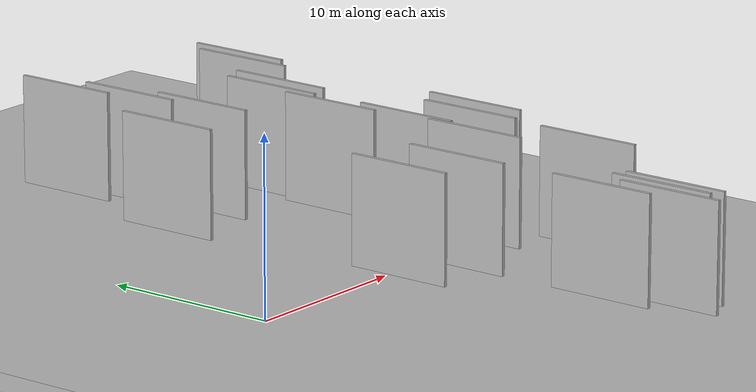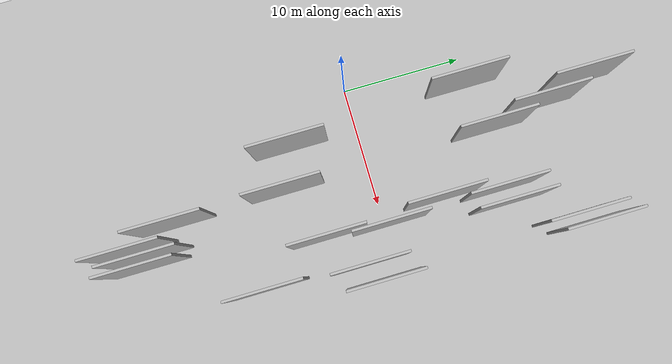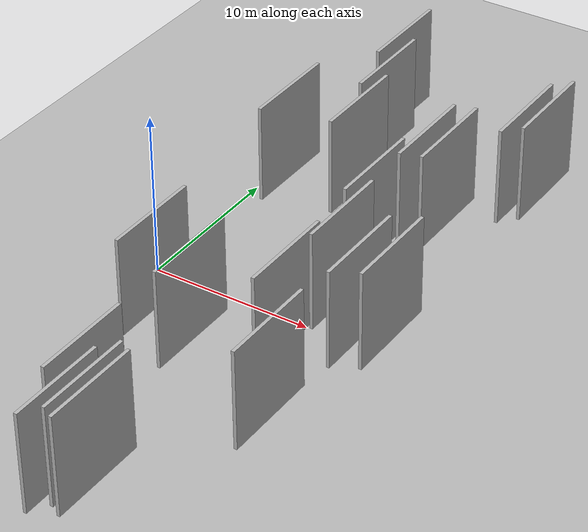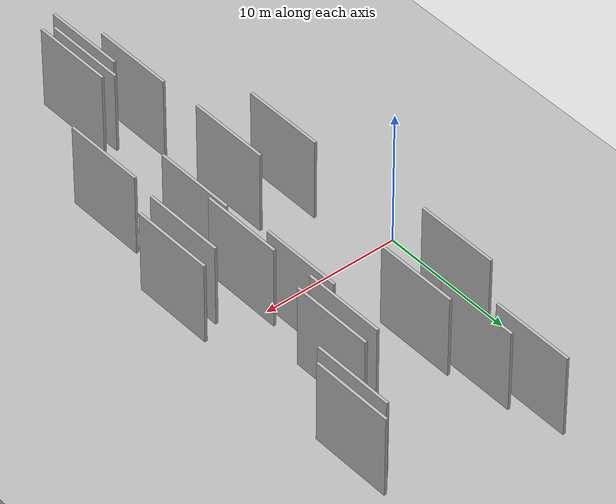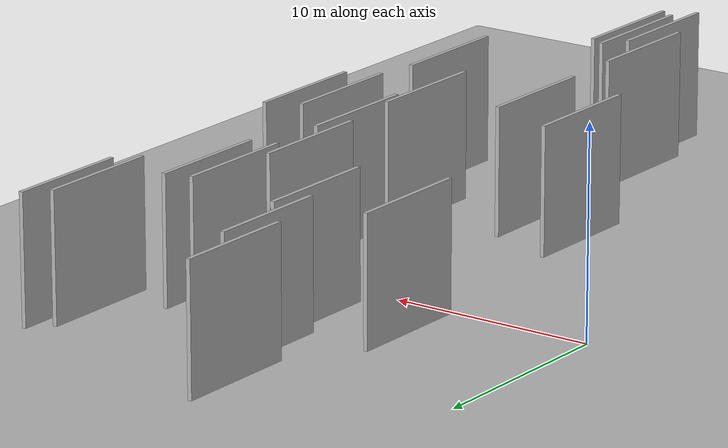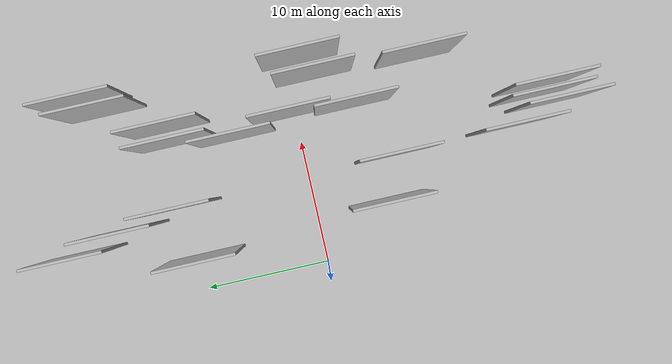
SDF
<?xml version="1.0" encoding="utf-8"?>

<sdf version="1.6">

   <world name="default">

      <gui fullscreen="0">

         <camera name="user_camera">

            <pose>-15 0 4.57585 0 0 0</pose>

            <view_controller>orbit</view_controller>

         </camera>

      </gui>

      <scene>

         <sky>

           <clouds>

             <speed>12</speed>

           </clouds>

         </sky>

         <ambient>0.4 0.4 0.4 1</ambient>

         <background>0.7 0.7 0.7 1</background>

         <shadows>1</shadows>

      </scene>

      <gravity>0 0 -9.8066</gravity>

      <magnetic_field>6e-06 2.3e-05 -4.2e-05</magnetic_field>

      <physics default="0" name="default_physics" type="ode">

         <ode>

            <solver>

               <type>quick</type>

               <iters>10</iters>

               <sor>1.0</sor>

               <use_dynamic_moi_rescaling>0</use_dynamic_moi_rescaling>

            </solver>

            <constraints>

               <cfm>0</cfm>

               <erp>0.2</erp>

               <contact_max_correcting_vel>100</contact_max_correcting_vel>

               <contact_surface_layer>0.001</contact_surface_layer>

            </constraints>

         </ode>

         <max_step_size>0.004</max_step_size>

         <real_time_factor>1</real_time_factor>

         <real_time_update_rate>250</real_time_update_rate>

      </physics>

      <light name="sun" type="directional">

         <cast_shadows>1</cast_shadows>

         <pose>0 0 10 0 0 0</pose>

         <diffuse>0.8 0.8 0.8 1</diffuse>

         <specular>0.2 0.2 0.2 1</specular>

         <attenuation>

            <range>1000</range>

            <constant>0.9</constant>

            <linear>0.01</linear>

            <quadratic>0.001</quadratic>

         </attenuation>

         <direction>-0.5 0.1 -0.9</direction>

      </light>

      <include>

         <name>ground_plane_1</name>

         <uri>model://HANNAS_ground_plane</uri>

         <pose>0 0 0  0 0 0</pose>

      </include>

      <include>

         <name>ground_plane_2</name>

         <uri>model://HANNAS_ground_plane</uri>

         <pose>100 0 0  0 0 0</pose>

      </include>

      <model name="HANNAS_wall_1">

         <static>1</static>

         <pose frame="">7.0231 10.0209 2.5 0.000000 0.000000 1.570796</pose>

         <link name="link">

            <pose frame="">0 0 3.00 0 0 0</pose>

            <collision name="collision">

               <geometry>

                  <box>

                     <size>6.00 0.2 6.00</size>

                  </box>

               </geometry>

               <max_contacts>10</max_contacts>

               <surface>

                  <contact>

                     <ode/>

                  </contact>

                  <bounce/>

                  <friction>

                     <torsional>

                        <ode/>

                     </torsional>

                     <ode/>

                  </friction>

               </surface>

            </collision>

            <visual name="visual">

               <cast_shadows>0</cast_shadows>

               <geometry>

                  <box>

                     <size>6.00 0.2 6.00</size>

                  </box>

               </geometry>

               <material>

                  <script>

                     <uri>model://HANNAS_wall/materials/scripts</uri>

                     <uri>model://HANNAS_wall/materials/textures</uri>

                     <name>vrc/HANNAS_wall</name>

                  </script>

               </material>

            </visual>

            <self_collide>0</self_collide>

            <enable_wind>0</enable_wind>

            <kinematic>0</kinematic>

         </link>

      </model>

      <model name="HANNAS_wall_2">

         <static>1</static>

         <pose frame="">7.4651 -15.7052 2.5 0.000000 0.000000 1.570796</pose>

         <link name="link">

            <pose frame="">0 0 3.00 0 0 0</pose>

            <collision name="collision">

               <geometry>

                  <box>

                     <size>6.00 0.2 6.00</size>

                  </box>

               </geometry>

               <max_contacts>10</max_contacts>

               <surface>

                  <contact>

                     <ode/>

                  </contact>

                  <bounce/>

                  <friction>

                     <torsional>

                        <ode/>

                     </torsional>

                     <ode/>

                  </friction>

               </surface>

            </collision>

            <visual name="visual">

               <cast_shadows>0</cast_shadows>

               <geometry>

                  <box>

                     <size>6.00 0.2 6.00</size>

                  </box>

               </geometry>

               <material>

                  <script>

                     <uri>model://HANNAS_wall/materials/scripts</uri>

                     <uri>model://HANNAS_wall/materials/textures</uri>

                     <name>vrc/HANNAS_wall</name>

                  </script>

               </material>

            </visual>

            <self_collide>0</self_collide>

            <enable_wind>0</enable_wind>

            <kinematic>0</kinematic>

         </link>

      </model>

      <model name="HANNAS_wall_3">

         <static>1</static>

         <pose frame="">14.2859 -9.9177 2.5 0.000000 0.000000 1.570796</pose>

         <link name="link">

            <pose frame="">0 0 3.00 0 0 0</pose>

            <collision name="collision">

               <geometry>

                  <box>

                     <size>6.00 0.2 6.00</size>

                  </box>

               </geometry>

               <max_contacts>10</max_contacts>

               <surface>

                  <contact>

                     <ode/>

                  </contact>

                  <bounce/>

                  <friction>

                     <torsional>

                        <ode/>

                     </torsional>

                     <ode/>

                  </friction>

               </surface>

            </collision>

            <visual name="visual">

               <cast_shadows>0</cast_shadows>

               <geometry>

                  <box>

                     <size>6.00 0.2 6.00</size>

                  </box>

               </geometry>

               <material>

                  <script>

                     <uri>model://HANNAS_wall/materials/scripts</uri>

                     <uri>model://HANNAS_wall/materials/textures</uri>

                     <name>vrc/HANNAS_wall</name>

                  </script>

               </material>

            </visual>

            <self_collide>0</self_collide>

            <enable_wind>0</enable_wind>

            <kinematic>0</kinematic>

         </link>

      </model>

      <model name="HANNAS_wall_4">

         <static>1</static>

         <pose frame="">10.0547 -18.4060 2.5 0.000000 0.000000 1.570796</pose>

         <link name="link">

            <pose frame="">0 0 3.00 0 0 0</pose>

            <collision name="collision">

               <geometry>

                  <box>

                     <size>6.00 0.2 6.00</size>

                  </box>

               </geometry>

               <max_contacts>10</max_contacts>

               <surface>

                  <contact>

                     <ode/>

                  </contact>

                  <bounce/>

                  <friction>

                     <torsional>

                        <ode/>

                     </torsional>

                     <ode/>

                  </friction>

               </surface>

            </collision>

            <visual name="visual">

               <cast_shadows>0</cast_shadows>

               <geometry>

                  <box>

                     <size>6.00 0.2 6.00</size>

                  </box>

               </geometry>

               <material>

                  <script>

                     <uri>model://HANNAS_wall/materials/scripts</uri>

                     <uri>model://HANNAS_wall/materials/textures</uri>

                     <name>vrc/HANNAS_wall</name>

                  </script>

               </material>

            </visual>

            <self_collide>0</self_collide>

            <enable_wind>0</enable_wind>

            <kinematic>0</kinematic>

         </link>

      </model>

      <model name="HANNAS_wall_5">

         <static>1</static>

         <pose frame="">11.7387 -4.5023 2.5 0.000000 0.000000 1.570796</pose>

         <link name="link">

            <pose frame="">0 0 3.00 0 0 0</pose>

            <collision name="collision">

               <geometry>

                  <box>

                     <size>6.00 0.2 6.00</size>

                  </box>

               </geometry>

               <max_contacts>10</max_contacts>

               <surface>

                  <contact>

                     <ode/>

                  </contact>

                  <bounce/>

                  <friction>

                     <torsional>

                        <ode/>

                     </torsional>

                     <ode/>

                  </friction>

               </surface>

            </collision>

            <visual name="visual">

               <cast_shadows>0</cast_shadows>

               <geometry>

                  <box>

                     <size>6.00 0.2 6.00</size>

                  </box>

               </geometry>

               <material>

                  <script>

                     <uri>model://HANNAS_wall/materials/scripts</uri>

                     <uri>model://HANNAS_wall/materials/textures</uri>

                     <name>vrc/HANNAS_wall</name>

                  </script>

               </material>

            </visual>

            <self_collide>0</self_collide>

            <enable_wind>0</enable_wind>

            <kinematic>0</kinematic>

         </link>

      </model>

      <model name="HANNAS_wall_6">

         <static>1</static>

         <pose frame="">7.3158 -6.7180 2.5 0.000000 0.000000 1.570796</pose>

         <link name="link">

            <pose frame="">0 0 3.00 0 0 0</pose>

            <collision name="collision">

               <geometry>

                  <box>

                     <size>6.00 0.2 6.00</size>

                  </box>

               </geometry>

               <max_contacts>10</max_contacts>

               <surface>

                  <contact>

                     <ode/>

                  </contact>

                  <bounce/>

                  <friction>

                     <torsional>

                        <ode/>

                     </torsional>

                     <ode/>

                  </friction>

               </surface>

            </collision>

            <visual name="visual">

               <cast_shadows>0</cast_shadows>

               <geometry>

                  <box>

                     <size>6.00 0.2 6.00</size>

                  </box>

               </geometry>

               <material>

                  <script>

                     <uri>model://HANNAS_wall/materials/scripts</uri>

                     <uri>model://HANNAS_wall/materials/textures</uri>

                     <name>vrc/HANNAS_wall</name>

                  </script>

               </material>

            </visual>

            <self_collide>0</self_collide>

            <enable_wind>0</enable_wind>

            <kinematic>0</kinematic>

         </link>

      </model>

      <model name="HANNAS_wall_7">

         <static>1</static>

         <pose frame="">16.0423 -1.2804 2.5 0.000000 0.000000 1.570796</pose>

         <link name="link">

            <pose frame="">0 0 3.00 0 0 0</pose>

            <collision name="collision">

               <geometry>

                  <box>

                     <size>6.00 0.2 6.00</size>

                  </box>

               </geometry>

               <max_contacts>10</max_contacts>

               <surface>

                  <contact>

                     <ode/>

                  </contact>

                  <bounce/>

                  <friction>

                     <torsional>

                        <ode/>

                     </torsional>

                     <ode/>

                  </friction>

               </surface>

            </collision>

            <visual name="visual">

               <cast_shadows>0</cast_shadows>

               <geometry>

                  <box>

                     <size>6.00 0.2 6.00</size>

                  </box>

               </geometry>

               <material>

                  <script>

                     <uri>model://HANNAS_wall/materials/scripts</uri>

                     <uri>model://HANNAS_wall/materials/textures</uri>

                     <name>vrc/HANNAS_wall</name>

                  </script>

               </material>

            </visual>

            <self_collide>0</self_collide>

            <enable_wind>0</enable_wind>

            <kinematic>0</kinematic>

         </link>

      </model>

      <model name="HANNAS_wall_8">

         <static>1</static>

         <pose frame="">3.0010 9.0312 2.5 0.000000 0.000000 1.570796</pose>

         <link name="link">

            <pose frame="">0 0 3.00 0 0 0</pose>

            <collision name="collision">

               <geometry>

                  <box>

                     <size>6.00 0.2 6.00</size>

                  </box>

               </geometry>

               <max_contacts>10</max_contacts>

               <surface>

                  <contact>

                     <ode/>

                  </contact>

                  <bounce/>

                  <friction>

                     <torsional>

                        <ode/>

                     </torsional>

                     <ode/>

                  </friction>

               </surface>

            </collision>

            <visual name="visual">

               <cast_shadows>0</cast_shadows>

               <geometry>

                  <box>

                     <size>6.00 0.2 6.00</size>

                  </box>

               </geometry>

               <material>

                  <script>

                     <uri>model://HANNAS_wall/materials/scripts</uri>

                     <uri>model://HANNAS_wall/materials/textures</uri>

                     <name>vrc/HANNAS_wall</name>

                  </script>

               </material>

            </visual>

            <self_collide>0</self_collide>

            <enable_wind>0</enable_wind>

            <kinematic>0</kinematic>

         </link>

      </model>

      <model name="HANNAS_wall_9">

         <static>1</static>

         <pose frame="">8.5928 -19.0831 2.5 0.000000 0.000000 1.570796</pose>

         <link name="link">

            <pose frame="">0 0 3.00 0 0 0</pose>

            <collision name="collision">

               <geometry>

                  <box>

                     <size>6.00 0.2 6.00</size>

                  </box>

               </geometry>

               <max_contacts>10</max_contacts>

               <surface>

                  <contact>

                     <ode/>

                  </contact>

                  <bounce/>

                  <friction>

                     <torsional>

                        <ode/>

                     </torsional>

                     <ode/>

                  </friction>

               </surface>

            </collision>

            <visual name="visual">

               <cast_shadows>0</cast_shadows>

               <geometry>

                  <box>

                     <size>6.00 0.2 6.00</size>

                  </box>

               </geometry>

               <material>

                  <script>

                     <uri>model://HANNAS_wall/materials/scripts</uri>

                     <uri>model://HANNAS_wall/materials/textures</uri>

                     <name>vrc/HANNAS_wall</name>

                  </script>

               </material>

            </visual>

            <self_collide>0</self_collide>

            <enable_wind>0</enable_wind>

            <kinematic>0</kinematic>

         </link>

      </model>

      <model name="HANNAS_wall_10">

         <static>1</static>

         <pose frame="">11.2848 4.7194 2.5 0.000000 0.000000 1.570796</pose>

         <link name="link">

            <pose frame="">0 0 3.00 0 0 0</pose>

            <collision name="collision">

               <geometry>

                  <box>

                     <size>6.00 0.2 6.00</size>

                  </box>

               </geometry>

               <max_contacts>10</max_contacts>

               <surface>

                  <contact>

                     <ode/>

                  </contact>

                  <bounce/>

                  <friction>

                     <torsional>

                        <ode/>

                     </torsional>

                     <ode/>

                  </friction>

               </surface>

            </collision>

            <visual name="visual">

               <cast_shadows>0</cast_shadows>

               <geometry>

                  <box>

                     <size>6.00 0.2 6.00</size>

                  </box>

               </geometry>

               <material>

                  <script>

                     <uri>model://HANNAS_wall/materials/scripts</uri>

                     <uri>model://HANNAS_wall/materials/textures</uri>

                     <name>vrc/HANNAS_wall</name>

                  </script>

               </material>

            </visual>

            <self_collide>0</self_collide>

            <enable_wind>0</enable_wind>

            <kinematic>0</kinematic>

         </link>

      </model>

      <model name="HANNAS_wall_11">

         <static>1</static>

         <pose frame="">9.3574 -18.0366 2.5 0.000000 0.000000 1.570796</pose>

         <link name="link">

            <pose frame="">0 0 3.00 0 0 0</pose>

            <collision name="collision">

               <geometry>

                  <box>

                     <size>6.00 0.2 6.00</size>

                  </box>

               </geometry>

               <max_contacts>10</max_contacts>

               <surface>

                  <contact>

                     <ode/>

                  </contact>

                  <bounce/>

                  <friction>

                     <torsional>

                        <ode/>

                     </torsional>

                     <ode/>

                  </friction>

               </surface>

            </collision>

            <visual name="visual">

               <cast_shadows>0</cast_shadows>

               <geometry>

                  <box>

                     <size>6.00 0.2 6.00</size>

                  </box>

               </geometry>

               <material>

                  <script>

                     <uri>model://HANNAS_wall/materials/scripts</uri>

                     <uri>model://HANNAS_wall/materials/textures</uri>

                     <name>vrc/HANNAS_wall</name>

                  </script>

               </material>

            </visual>

            <self_collide>0</self_collide>

            <enable_wind>0</enable_wind>

            <kinematic>0</kinematic>

         </link>

      </model>

      <model name="HANNAS_wall_12">

         <static>1</static>

         <pose frame="">13.0757 9.6037 2.5 0.000000 0.000000 1.570796</pose>

         <link name="link">

            <pose frame="">0 0 3.00 0 0 0</pose>

            <collision name="collision">

               <geometry>

                  <box>

                     <size>6.00 0.2 6.00</size>

                  </box>

               </geometry>

               <max_contacts>10</max_contacts>

               <surface>

                  <contact>

                     <ode/>

                  </contact>

                  <bounce/>

                  <friction>

                     <torsional>

                        <ode/>

                     </torsional>

                     <ode/>

                  </friction>

               </surface>

            </collision>

            <visual name="visual">

               <cast_shadows>0</cast_shadows>

               <geometry>

                  <box>

                     <size>6.00 0.2 6.00</size>

                  </box>

               </geometry>

               <material>

                  <script>

                     <uri>model://HANNAS_wall/materials/scripts</uri>

                     <uri>model://HANNAS_wall/materials/textures</uri>

                     <name>vrc/HANNAS_wall</name>

                  </script>

               </material>

            </visual>

            <self_collide>0</self_collide>

            <enable_wind>0</enable_wind>

            <kinematic>0</kinematic>

         </link>

      </model>

      <model name="HANNAS_wall_13">

         <static>1</static>

         <pose frame="">16.2721 15.0955 2.5 0.000000 0.000000 1.570796</pose>

         <link name="link">

            <pose frame="">0 0 3.00 0 0 0</pose>

            <collision name="collision">

               <geometry>

                  <box>

                     <size>6.00 0.2 6.00</size>

                  </box>

               </geometry>

               <max_contacts>10</max_contacts>

               <surface>

                  <contact>

                     <ode/>

                  </contact>

                  <bounce/>

                  <friction>

                     <torsional>

                        <ode/>

                     </torsional>

                     <ode/>

                  </friction>

               </surface>

            </collision>

            <visual name="visual">

               <cast_shadows>0</cast_shadows>

               <geometry>

                  <box>

                     <size>6.00 0.2 6.00</size>

                  </box>

               </geometry>

               <material>

                  <script>

                     <uri>model://HANNAS_wall/materials/scripts</uri>

                     <uri>model://HANNAS_wall/materials/textures</uri>

                     <name>vrc/HANNAS_wall</name>

                  </script>

               </material>

            </visual>

            <self_collide>0</self_collide>

            <enable_wind>0</enable_wind>

            <kinematic>0</kinematic>

         </link>

      </model>

      <model name="HANNAS_wall_14">

         <static>1</static>

         <pose frame="">14.5871 -2.0545 2.5 0.000000 0.000000 1.570796</pose>

         <link name="link">

            <pose frame="">0 0 3.00 0 0 0</pose>

            <collision name="collision">

               <geometry>

                  <box>

                     <size>6.00 0.2 6.00</size>

                  </box>

               </geometry>

               <max_contacts>10</max_contacts>

               <surface>

                  <contact>

                     <ode/>

                  </contact>

                  <bounce/>

                  <friction>

                     <torsional>

                        <ode/>

                     </torsional>

                     <ode/>

                  </friction>

               </surface>

            </collision>

            <visual name="visual">

               <cast_shadows>0</cast_shadows>

               <geometry>

                  <box>

                     <size>6.00 0.2 6.00</size>

                  </box>

               </geometry>

               <material>

                  <script>

                     <uri>model://HANNAS_wall/materials/scripts</uri>

                     <uri>model://HANNAS_wall/materials/textures</uri>

                     <name>vrc/HANNAS_wall</name>

                  </script>

               </material>

            </visual>

            <self_collide>0</self_collide>

            <enable_wind>0</enable_wind>

            <kinematic>0</kinematic>

         </link>

      </model>

      <model name="HANNAS_wall_15">

         <static>1</static>

         <pose frame="">15.3826 14.1487 2.5 0.000000 0.000000 1.570796</pose>

         <link name="link">

            <pose frame="">0 0 3.00 0 0 0</pose>

            <collision name="collision">

               <geometry>

                  <box>

                     <size>6.00 0.2 6.00</size>

                  </box>

               </geometry>

               <max_contacts>10</max_contacts>

               <surface>

                  <contact>

                     <ode/>

                  </contact>

                  <bounce/>

                  <friction>

                     <torsional>

                        <ode/>

                     </torsional>

                     <ode/>

                  </friction>

               </surface>

            </collision>

            <visual name="visual">

               <cast_shadows>0</cast_shadows>

               <geometry>

                  <box>

                     <size>6.00 0.2 6.00</size>

                  </box>

               </geometry>

               <material>

                  <script>

                     <uri>model://HANNAS_wall/materials/scripts</uri>

                     <uri>model://HANNAS_wall/materials/textures</uri>

                     <name>vrc/HANNAS_wall</name>

                  </script>

               </material>

            </visual>

            <self_collide>0</self_collide>

            <enable_wind>0</enable_wind>

            <kinematic>0</kinematic>

         </link>

      </model>

      <model name="HANNAS_wall_16">

         <static>1</static>

         <pose frame="">12.0683 0.2713 2.5 0.000000 0.000000 1.570796</pose>

         <link name="link">

            <pose frame="">0 0 3.00 0 0 0</pose>

            <collision name="collision">

               <geometry>

                  <box>

                     <size>6.00 0.2 6.00</size>

                  </box>

               </geometry>

               <max_contacts>10</max_contacts>

               <surface>

                  <contact>

                     <ode/>

                  </contact>

                  <bounce/>

                  <friction>

                     <torsional>

                        <ode/>

                     </torsional>

                     <ode/>

                  </friction>

               </surface>

            </collision>

            <visual name="visual">

               <cast_shadows>0</cast_shadows>

               <geometry>

                  <box>

                     <size>6.00 0.2 6.00</size>

                  </box>

               </geometry>

               <material>

                  <script>

                     <uri>model://HANNAS_wall/materials/scripts</uri>

                     <uri>model://HANNAS_wall/materials/textures</uri>

                     <name>vrc/HANNAS_wall</name>

                  </script>

               </material>

            </visual>

            <self_collide>0</self_collide>

            <enable_wind>0</enable_wind>

            <kinematic>0</kinematic>

         </link>

      </model>

      <model name="HANNAS_wall_17">

         <static>1</static>

         <pose frame="">4.0643 -5.5037 2.5 0.000000 0.000000 1.570796</pose>

         <link name="link">

            <pose frame="">0 0 3.00 0 0 0</pose>

            <collision name="collision">

               <geometry>

                  <box>

                     <size>6.00 0.2 6.00</size>

                  </box>

               </geometry>

               <max_contacts>10</max_contacts>

               <surface>

                  <contact>

                     <ode/>

                  </contact>

                  <bounce/>

                  <friction>

                     <torsional>

                        <ode/>

                     </torsional>

                     <ode/>

                  </friction>

               </surface>

            </collision>

            <visual name="visual">

               <cast_shadows>0</cast_shadows>

               <geometry>

                  <box>

                     <size>6.00 0.2 6.00</size>

                  </box>

               </geometry>

               <material>

                  <script>

                     <uri>model://HANNAS_wall/materials/scripts</uri>

                     <uri>model://HANNAS_wall/materials/textures</uri>

                     <name>vrc/HANNAS_wall</name>

                  </script>

               </material>

            </visual>

            <self_collide>0</self_collide>

            <enable_wind>0</enable_wind>

            <kinematic>0</kinematic>

         </link>

      </model>

      <model name="HANNAS_wall_18">

         <static>1</static>

         <pose frame="">6.2353 14.4072 2.5 0.000000 0.000000 1.570796</pose>

         <link name="link">

            <pose frame="">0 0 3.00 0 0 0</pose>

            <collision name="collision">

               <geometry>

                  <box>

                     <size>6.00 0.2 6.00</size>

                  </box>

               </geometry>

               <max_contacts>10</max_contacts>

               <surface>

                  <contact>

                     <ode/>

                  </contact>

                  <bounce/>

                  <friction>

                     <torsional>

                        <ode/>

                     </torsional>

                     <ode/>

                  </friction>

               </surface>

            </collision>

            <visual name="visual">

               <cast_shadows>0</cast_shadows>

               <geometry>

                  <box>

                     <size>6.00 0.2 6.00</size>

                  </box>

               </geometry>

               <material>

                  <script>

                     <uri>model://HANNAS_wall/materials/scripts</uri>

                     <uri>model://HANNAS_wall/materials/textures</uri>

                     <name>vrc/HANNAS_wall</name>

                  </script>

               </material>

            </visual>

            <self_collide>0</self_collide>

            <enable_wind>0</enable_wind>

            <kinematic>0</kinematic>

         </link>

      </model>

      <model name="HANNAS_wall_19">

         <static>1</static>

         <pose frame="">11.8815 9.2583 2.5 0.000000 0.000000 1.570796</pose>

         <link name="link">

            <pose frame="">0 0 3.00 0 0 0</pose>

            <collision name="collision">

               <geometry>

                  <box>

                     <size>6.00 0.2 6.00</size>

                  </box>

               </geometry>

               <max_contacts>10</max_contacts>

               <surface>

                  <contact>

                     <ode/>

                  </contact>

                  <bounce/>

                  <friction>

                     <torsional>

                        <ode/>

                     </torsional>

                     <ode/>

                  </friction>

               </surface>

            </collision>

            <visual name="visual">

               <cast_shadows>0</cast_shadows>

               <geometry>

                  <box>

                     <size>6.00 0.2 6.00</size>

                  </box>

               </geometry>

               <material>

                  <script>

                     <uri>model://HANNAS_wall/materials/scripts</uri>

                     <uri>model://HANNAS_wall/materials/textures</uri>

                     <name>vrc/HANNAS_wall</name>

                  </script>

               </material>

            </visual>

            <self_collide>0</self_collide>

            <enable_wind>0</enable_wind>

            <kinematic>0</kinematic>

         </link>

      </model>

      <model name="HANNAS_wall_20">

         <static>1</static>

         <pose frame="">5.1890 17.9859 2.5 0.000000 0.000000 1.570796</pose>

         <link name="link">

            <pose frame="">0 0 3.00 0 0 0</pose>

            <collision name="collision">

               <geometry>

                  <box>

                     <size>6.00 0.2 6.00</size>

                  </box>

               </geometry>

               <max_contacts>10</max_contacts>

               <surface>

                  <contact>

                     <ode/>

                  </contact>

                  <bounce/>

                  <friction>

                     <torsional>

                        <ode/>

                     </torsional>

                     <ode/>

                  </friction>

               </surface>

            </collision>

            <visual name="visual">

               <cast_shadows>0</cast_shadows>

               <geometry>

                  <box>

                     <size>6.00 0.2 6.00</size>

                  </box>

               </geometry>

               <material>

                  <script>

                     <uri>model://HANNAS_wall/materials/scripts</uri>

                     <uri>model://HANNAS_wall/materials/textures</uri>

                     <name>vrc/HANNAS_wall</name>

                  </script>

               </material>

            </visual>

            <self_collide>0</self_collide>

            <enable_wind>0</enable_wind>

            <kinematic>0</kinematic>

         </link>

      </model>

   </world>

</sdf>

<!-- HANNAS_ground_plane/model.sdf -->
<sdf version="1.4">
<model name="HANNAS_ground_plane">
  <static>true</static>
    <link name="link">
      <collision name="collision">
        <geometry>
          <plane>
            <normal>0 0 1</normal>
            <size>1000 1000</size>
          </plane>
        </geometry>
        <surface>
          <friction>
            <ode>
              <mu>100</mu>
              <mu2>50</mu2>
            </ode>
          </friction>
        </surface>
      </collision>
      <visual name="visual">
        <cast_shadows>false</cast_shadows>
        <geometry>
          <plane>
            <normal>0 0 1</normal>
            <size>1000 1000</size>
          </plane>
        </geometry>
        <material>
          <script>
            <uri>model://HANNAS_ground_plane/materials/scripts/HANNAS_ground_plane.material</uri>
	    <uri>model://HANNAS_ground_plane/materials/textures</uri>
            <name>HANNASGroundPlane/Image</name>
          </script>
        </material>
      </visual>
    </link>
  </model>
</sdf>
